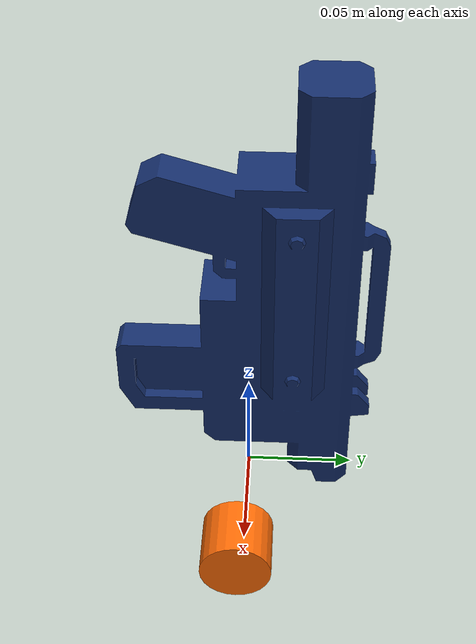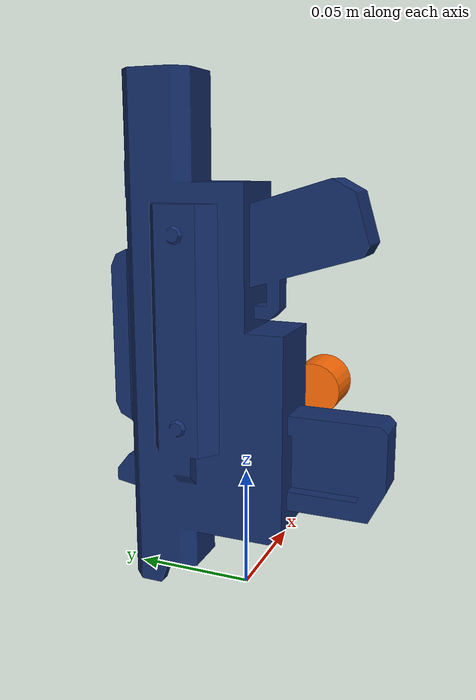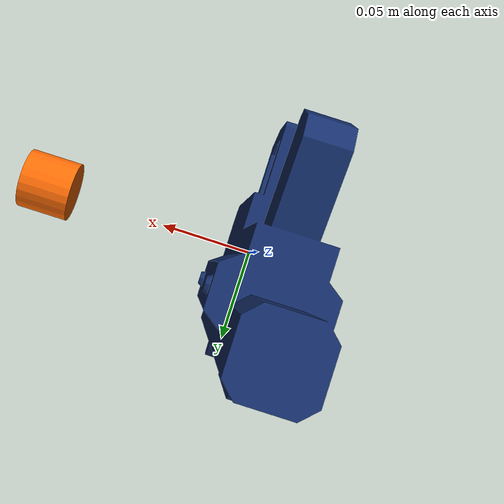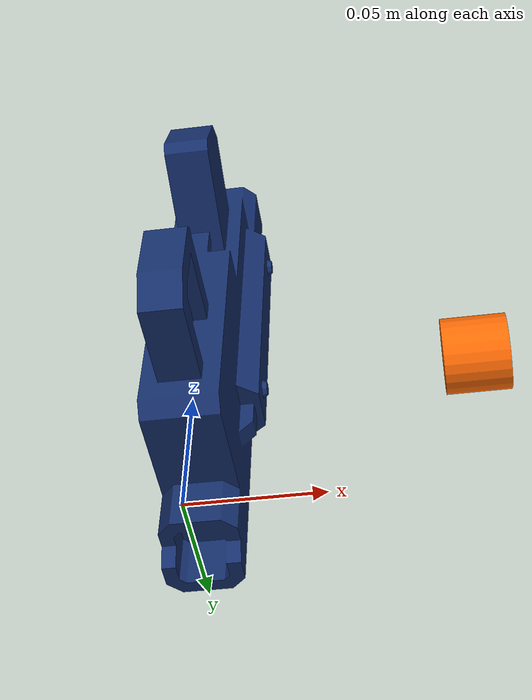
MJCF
<mujoco model="custom_obvious_mesh_toy_gun">
  <asset>
    <mesh name="visual_mesh" file="toy_blaster.obj" />
  </asset>
  <worldbody>
    <body>
      <body name="object">
        <geom conaffinity="0" contype="0" group="1" mesh="visual_mesh" rgba="0.08 0.18 0.42 1" type="mesh" />
        <geom conaffinity="0" contype="0" group="1" pos="0.105 0 0.060" quat="0.7071068 0 0.7071068 0" rgba="1.0 0.42 0.02 1" size="0.014 0.012" type="cylinder" />
        <geom
          density="100"
          friction="0.95 0.3 0.1"
          group="0"
          pos="0.0000 0.0000 0.0800"
          rgba="0.8 0.8 0.8 0.0"
          size="0.1250 0.0600 0.0800"
          type="box"
        />
        <geom
          name="reg_bbox"
          conaffinity="0"
          contype="0"
          group="3"
          pos="0.0000 0.0000 0.0800"
          rgba="0 0 0 0"
          size="0.1250 0.0600 0.0800"
          type="box"
        />
      </body>
      <site rgba="0 0 0 0" size="0.005" pos="0 0 0" name="bottom_site" />
      <site rgba="0 0 0 0" size="0.005" pos="0 0 0.1600" name="top_site" />
      <site rgba="0 0 0 0" size="0.005" pos="0.1250 0.1250 0" name="horizontal_radius_site" />
    </body>
  </worldbody>
</mujoco>
